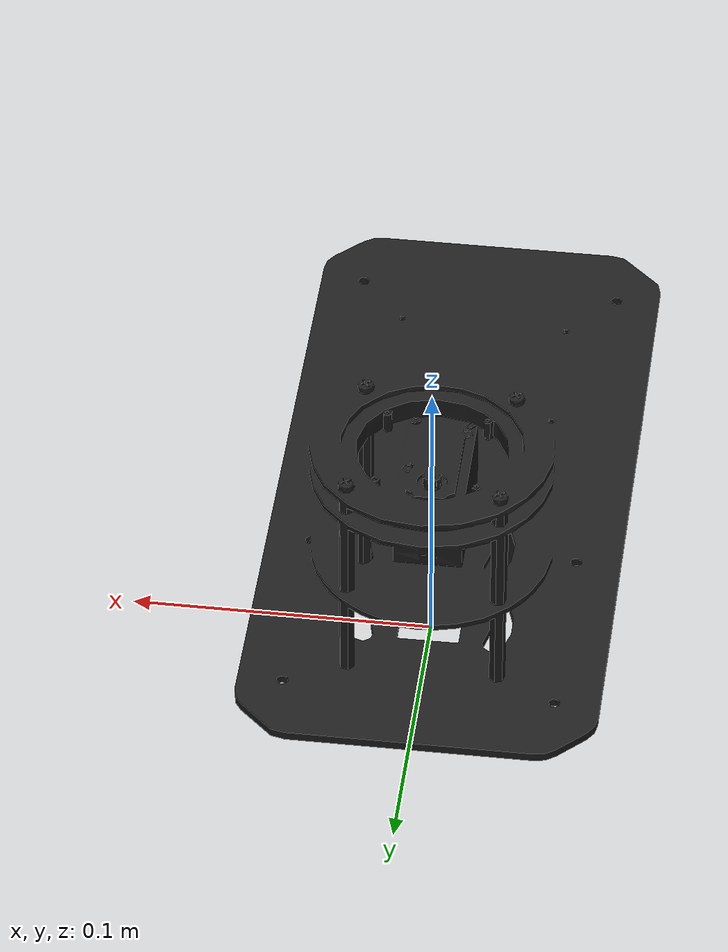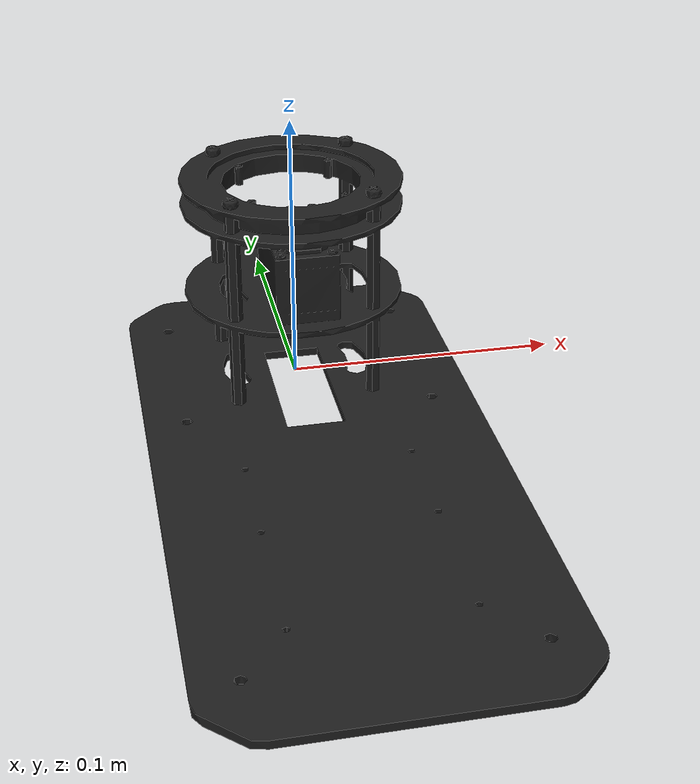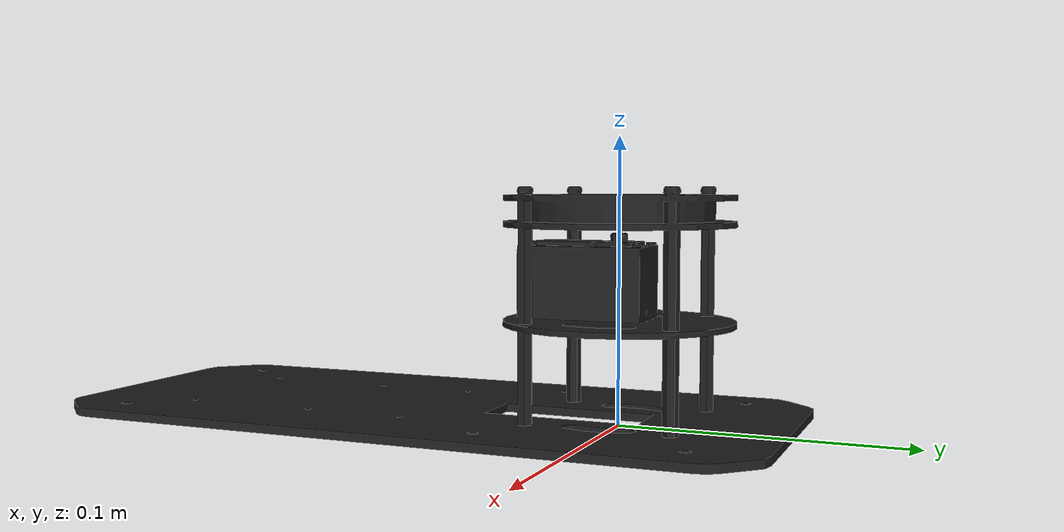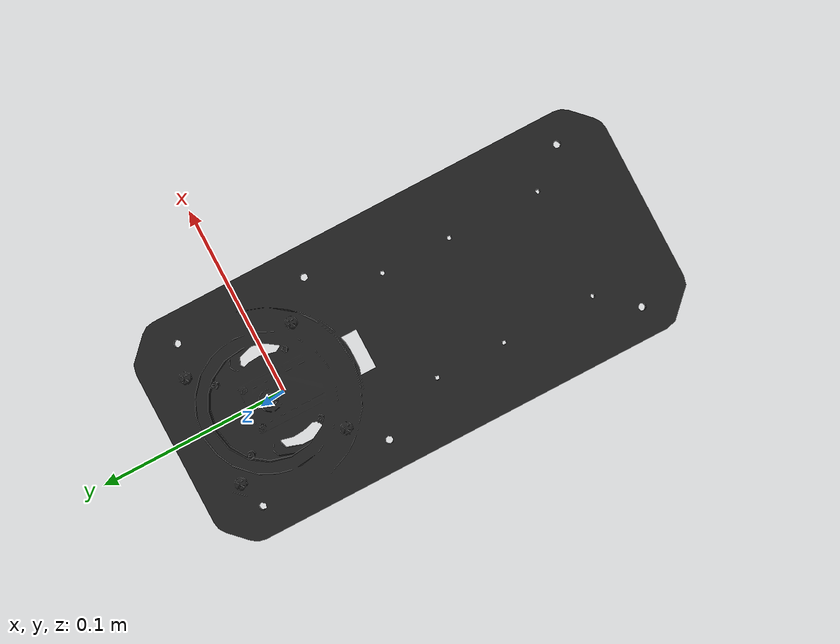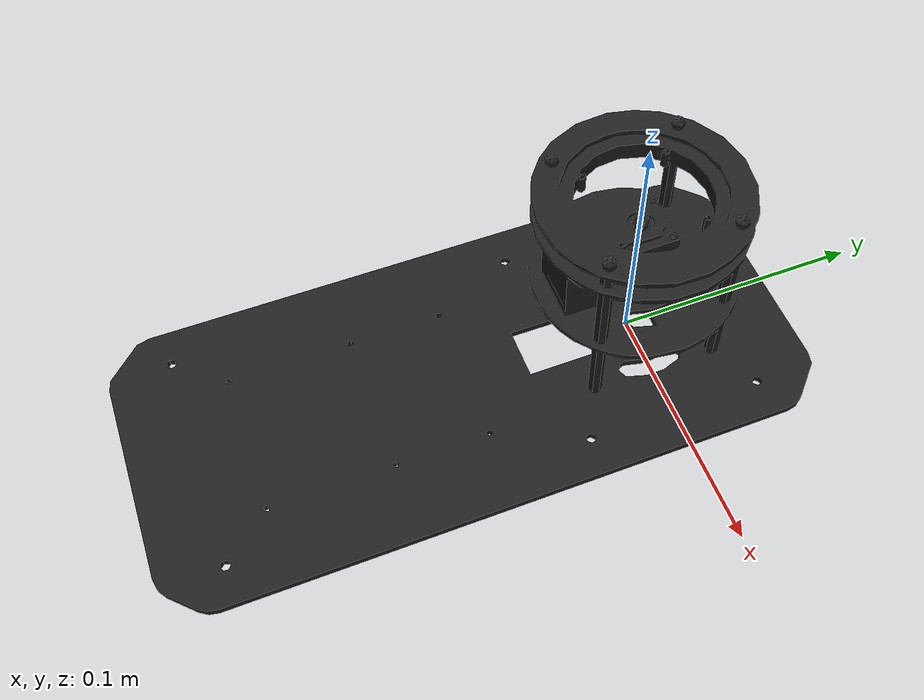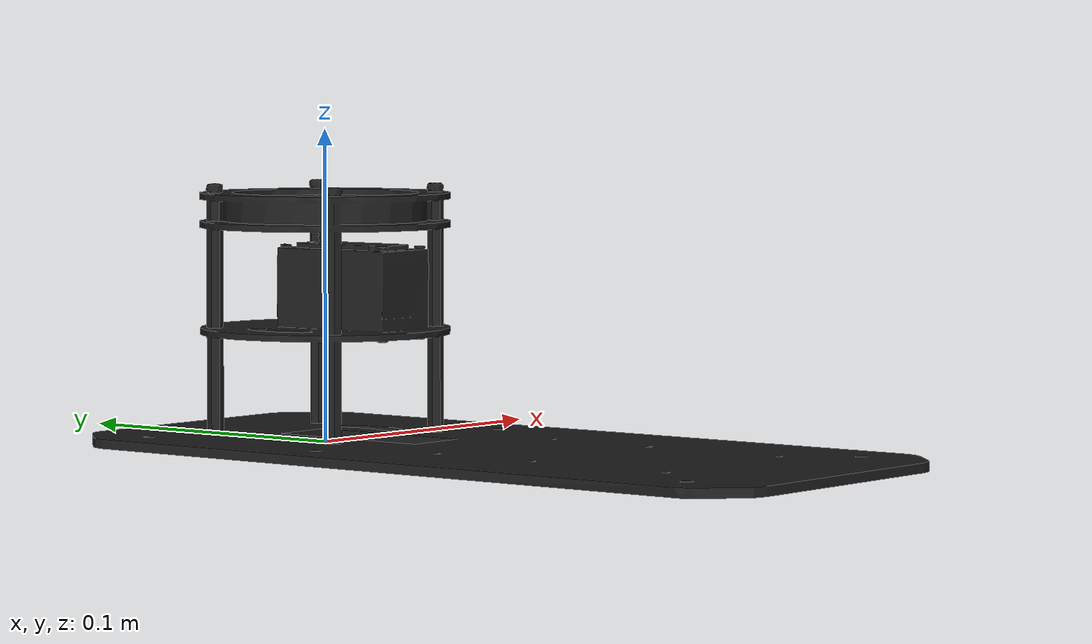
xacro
<?xml version="1.0" encoding="UTF-8" ?>
<robot xmlns:xacro="http://ros.org/wiki/xacro">

    <link name="arm_base_link">
        <visual>
            <origin xyz="0.0 0.0 0.0" rpy="0.0 0.0 0.0" />
            <geometry>
                <mesh filename="package://mujoco_ros2_pkg/meshes/low_poly/dofbot/visual/base_link_low_poly.stl" />
            </geometry>
            <material name="eerie_black" />
        </visual>
        <collision>
            <origin xyz="0.0 0.0 0.0" rpy="0.0 0.0 0.0" />
            <geometry>
                <mesh filename="package://mujoco_ros2_pkg/meshes/low_poly/dofbot/visual/base_link_low_poly.stl" />
            </geometry>
        </collision>
        <inertial>
            <origin xyz="-0.0304416859098744 4.23384368655101E-05 0.0448234503408059" rpy="0 0 0" />
            <mass value="1.0754239466482" />
            <inertia ixx="0.0208831789264125" ixy="2.4618093127858E-06" ixz="0.00616019290028669" iyy="0.0265621377486244" iyz="-1.10079499865282E-06" izz="0.0129535610833954" />
        </inertial>
    </link>

</robot>
